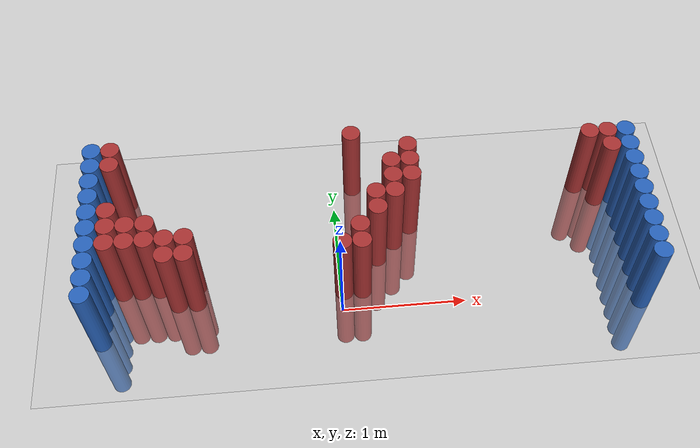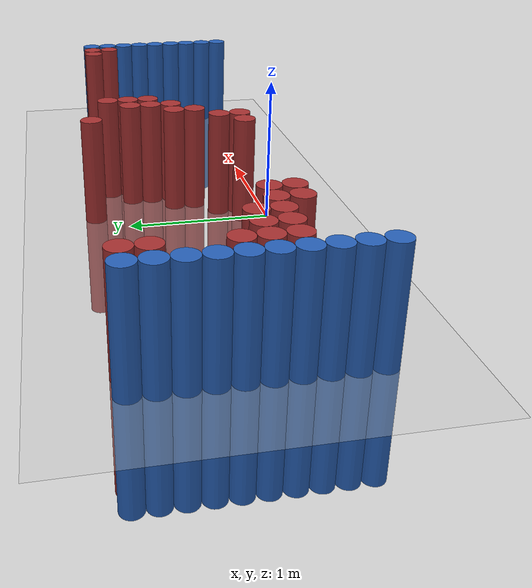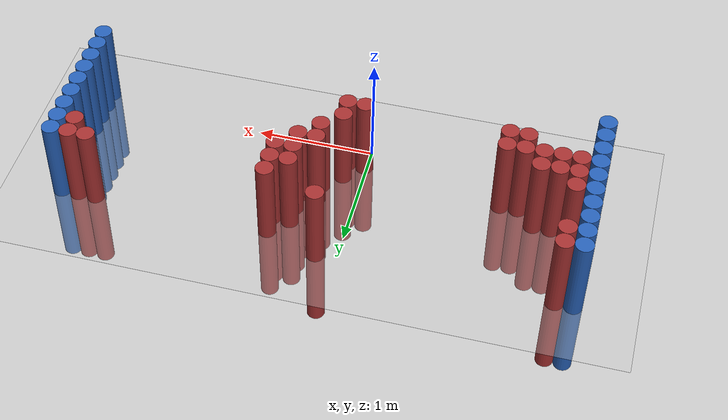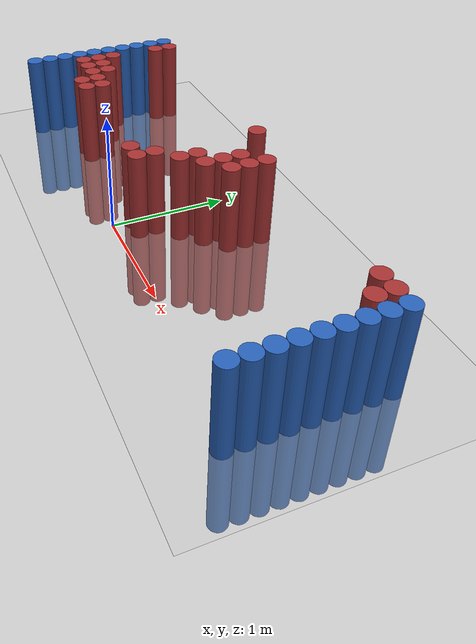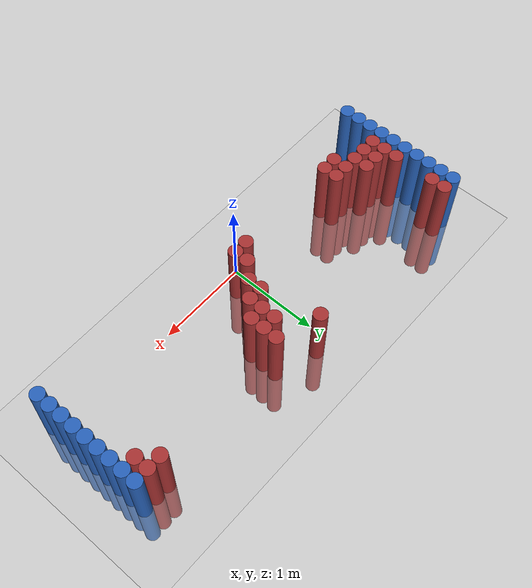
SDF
<sdf version="1.6">
 <world name="default">
  <model name="ground_plane">
   <static>1</static>
   <link name="link">
    <collision name="collision">
     <geometry><plane><normal>0 0 1</normal><size>100 100</size></plane></geometry>
     <surface><friction><ode><mu>100</mu><mu2>50</mu2></ode></friction></surface>
    </collision>
    <visual name="visual">
     <cast_shadows>0</cast_shadows>
     <geometry><plane><normal>0 0 1</normal><size>100 100</size></plane></geometry>
     <material>
      <script><uri>file://media/materials/scripts/gazebo.material</uri><name>Gazebo/Grey</name></script>
     </material>
    </visual>
   </link>
  </model>
  <model name="unit_cylinder_92">
   <static>1</static>
   <pose>2.425000 -0.125000 0.000000 0.000000 0.000000 0.000000</pose>
   <link name="link">
    <inertial>
     <mass>1</mass>
     <inertia><ixx>0.145833</ixx><ixy>0</ixy><ixz>0</ixz><iyy>0.145833</iyy><iyz>0</iyz><izz>0.125</izz></inertia>
    </inertial>
    <collision name="collision">
     <geometry><cylinder><radius>0.075000</radius><length>1.5</length></cylinder></geometry>
    </collision>
    <visual name="visual">
     <geometry><cylinder><radius>0.075000</radius><length>1.5</length></cylinder></geometry>
     <material>
      <ambient>0.152000 0.379000 0.720000 1</ambient>
      <diffuse>0.152000 0.379000 0.720000 1</diffuse>
     </material>
     <material>
      <script><name>Gazebo/Grey</name><uri>file://media/materials/scripts/gazebo.material</uri></script>
     </material>
    </visual>
   </link>
  </model>
  <model name="unit_cylinder_93">
   <static>1</static>
   <pose>-1.925000 -0.125000 0.000000 0.000000 0.000000 0.000000</pose>
   <link name="link">
    <inertial>
     <mass>1</mass>
     <inertia><ixx>0.145833</ixx><ixy>0</ixy><ixz>0</ixz><iyy>0.145833</iyy><iyz>0</iyz><izz>0.125</izz></inertia>
    </inertial>
    <collision name="collision">
     <geometry><cylinder><radius>0.075000</radius><length>1.5</length></cylinder></geometry>
    </collision>
    <visual name="visual">
     <geometry><cylinder><radius>0.075000</radius><length>1.5</length></cylinder></geometry>
     <material>
      <ambient>0.152000 0.379000 0.720000 1</ambient>
      <diffuse>0.152000 0.379000 0.720000 1</diffuse>
     </material>
     <material>
      <script><name>Gazebo/Grey</name><uri>file://media/materials/scripts/gazebo.material</uri></script>
     </material>
    </visual>
   </link>
  </model>
  <model name="unit_cylinder_94">
   <static>1</static>
   <pose>2.425000 0.025000 0.000000 0.000000 0.000000 0.000000</pose>
   <link name="link">
    <inertial>
     <mass>1</mass>
     <inertia><ixx>0.145833</ixx><ixy>0</ixy><ixz>0</ixz><iyy>0.145833</iyy><iyz>0</iyz><izz>0.125</izz></inertia>
    </inertial>
    <collision name="collision">
     <geometry><cylinder><radius>0.075000</radius><length>1.5</length></cylinder></geometry>
    </collision>
    <visual name="visual">
     <geometry><cylinder><radius>0.075000</radius><length>1.5</length></cylinder></geometry>
     <material>
      <ambient>0.152000 0.379000 0.720000 1</ambient>
      <diffuse>0.152000 0.379000 0.720000 1</diffuse>
     </material>
     <material>
      <script><name>Gazebo/Grey</name><uri>file://media/materials/scripts/gazebo.material</uri></script>
     </material>
    </visual>
   </link>
  </model>
  <model name="unit_cylinder_95">
   <static>1</static>
   <pose>-1.925000 0.025000 0.000000 0.000000 0.000000 0.000000</pose>
   <link name="link">
    <inertial>
     <mass>1</mass>
     <inertia><ixx>0.145833</ixx><ixy>0</ixy><ixz>0</ixz><iyy>0.145833</iyy><iyz>0</iyz><izz>0.125</izz></inertia>
    </inertial>
    <collision name="collision">
     <geometry><cylinder><radius>0.075000</radius><length>1.5</length></cylinder></geometry>
    </collision>
    <visual name="visual">
     <geometry><cylinder><radius>0.075000</radius><length>1.5</length></cylinder></geometry>
     <material>
      <ambient>0.152000 0.379000 0.720000 1</ambient>
      <diffuse>0.152000 0.379000 0.720000 1</diffuse>
     </material>
     <material>
      <script><name>Gazebo/Grey</name><uri>file://media/materials/scripts/gazebo.material</uri></script>
     </material>
    </visual>
   </link>
  </model>
  <model name="unit_cylinder_96">
   <static>1</static>
   <pose>-1.925000 0.175000 0.000000 0.000000 0.000000 0.000000</pose>
   <link name="link">
    <inertial>
     <mass>1</mass>
     <inertia><ixx>0.145833</ixx><ixy>0</ixy><ixz>0</ixz><iyy>0.145833</iyy><iyz>0</iyz><izz>0.125</izz></inertia>
    </inertial>
    <collision name="collision">
     <geometry><cylinder><radius>0.075000</radius><length>1.5</length></cylinder></geometry>
    </collision>
    <visual name="visual">
     <geometry><cylinder><radius>0.075000</radius><length>1.5</length></cylinder></geometry>
     <material>
      <ambient>0.152000 0.379000 0.720000 1</ambient>
      <diffuse>0.152000 0.379000 0.720000 1</diffuse>
     </material>
     <material>
      <script><name>Gazebo/Grey</name><uri>file://media/materials/scripts/gazebo.material</uri></script>
     </material>
    </visual>
   </link>
  </model>
  <model name="unit_cylinder_97">
   <static>1</static>
   <pose>-1.925000 0.325000 0.000000 0.000000 0.000000 0.000000</pose>
   <link name="link">
    <inertial>
     <mass>1</mass>
     <inertia><ixx>0.145833</ixx><ixy>0</ixy><ixz>0</ixz><iyy>0.145833</iyy><iyz>0</iyz><izz>0.125</izz></inertia>
    </inertial>
    <collision name="collision">
     <geometry><cylinder><radius>0.075000</radius><length>1.5</length></cylinder></geometry>
    </collision>
    <visual name="visual">
     <geometry><cylinder><radius>0.075000</radius><length>1.5</length></cylinder></geometry>
     <material>
      <ambient>0.152000 0.379000 0.720000 1</ambient>
      <diffuse>0.152000 0.379000 0.720000 1</diffuse>
     </material>
     <material>
      <script><name>Gazebo/Grey</name><uri>file://media/materials/scripts/gazebo.material</uri></script>
     </material>
    </visual>
   </link>
  </model>
  <model name="unit_cylinder_98">
   <static>1</static>
   <pose>-1.925000 0.475000 0.000000 0.000000 0.000000 0.000000</pose>
   <link name="link">
    <inertial>
     <mass>1</mass>
     <inertia><ixx>0.145833</ixx><ixy>0</ixy><ixz>0</ixz><iyy>0.145833</iyy><iyz>0</iyz><izz>0.125</izz></inertia>
    </inertial>
    <collision name="collision">
     <geometry><cylinder><radius>0.075000</radius><length>1.5</length></cylinder></geometry>
    </collision>
    <visual name="visual">
     <geometry><cylinder><radius>0.075000</radius><length>1.5</length></cylinder></geometry>
     <material>
      <ambient>0.152000 0.379000 0.720000 1</ambient>
      <diffuse>0.152000 0.379000 0.720000 1</diffuse>
     </material>
     <material>
      <script><name>Gazebo/Grey</name><uri>file://media/materials/scripts/gazebo.material</uri></script>
     </material>
    </visual>
   </link>
  </model>
  <model name="unit_cylinder_99">
   <static>1</static>
   <pose>-1.925000 0.625000 0.000000 0.000000 0.000000 0.000000</pose>
   <link name="link">
    <inertial>
     <mass>1</mass>
     <inertia><ixx>0.145833</ixx><ixy>0</ixy><ixz>0</ixz><iyy>0.145833</iyy><iyz>0</iyz><izz>0.125</izz></inertia>
    </inertial>
    <collision name="collision">
     <geometry><cylinder><radius>0.075000</radius><length>1.5</length></cylinder></geometry>
    </collision>
    <visual name="visual">
     <geometry><cylinder><radius>0.075000</radius><length>1.5</length></cylinder></geometry>
     <material>
      <ambient>0.152000 0.379000 0.720000 1</ambient>
      <diffuse>0.152000 0.379000 0.720000 1</diffuse>
     </material>
     <material>
      <script><name>Gazebo/Grey</name><uri>file://media/materials/scripts/gazebo.material</uri></script>
     </material>
    </visual>
   </link>
  </model>
  <model name="unit_cylinder_100">
   <static>1</static>
   <pose>-1.925000 0.775000 0.000000 0.000000 0.000000 0.000000</pose>
   <link name="link">
    <inertial>
     <mass>1</mass>
     <inertia><ixx>0.145833</ixx><ixy>0</ixy><ixz>0</ixz><iyy>0.145833</iyy><iyz>0</iyz><izz>0.125</izz></inertia>
    </inertial>
    <collision name="collision">
     <geometry><cylinder><radius>0.075000</radius><length>1.5</length></cylinder></geometry>
    </collision>
    <visual name="visual">
     <geometry><cylinder><radius>0.075000</radius><length>1.5</length></cylinder></geometry>
     <material>
      <ambient>0.152000 0.379000 0.720000 1</ambient>
      <diffuse>0.152000 0.379000 0.720000 1</diffuse>
     </material>
     <material>
      <script><name>Gazebo/Grey</name><uri>file://media/materials/scripts/gazebo.material</uri></script>
     </material>
    </visual>
   </link>
  </model>
  <model name="unit_cylinder_101">
   <static>1</static>
   <pose>-1.925000 0.925000 0.000000 0.000000 0.000000 0.000000</pose>
   <link name="link">
    <inertial>
     <mass>1</mass>
     <inertia><ixx>0.145833</ixx><ixy>0</ixy><ixz>0</ixz><iyy>0.145833</iyy><iyz>0</iyz><izz>0.125</izz></inertia>
    </inertial>
    <collision name="collision">
     <geometry><cylinder><radius>0.075000</radius><length>1.5</length></cylinder></geometry>
    </collision>
    <visual name="visual">
     <geometry><cylinder><radius>0.075000</radius><length>1.5</length></cylinder></geometry>
     <material>
      <ambient>0.152000 0.379000 0.720000 1</ambient>
      <diffuse>0.152000 0.379000 0.720000 1</diffuse>
     </material>
     <material>
      <script><name>Gazebo/Grey</name><uri>file://media/materials/scripts/gazebo.material</uri></script>
     </material>
    </visual>
   </link>
  </model>
  <model name="unit_cylinder_102">
   <static>1</static>
   <pose>-1.925000 1.075000 0.000000 0.000000 0.000000 0.000000</pose>
   <link name="link">
    <inertial>
     <mass>1</mass>
     <inertia><ixx>0.145833</ixx><ixy>0</ixy><ixz>0</ixz><iyy>0.145833</iyy><iyz>0</iyz><izz>0.125</izz></inertia>
    </inertial>
    <collision name="collision">
     <geometry><cylinder><radius>0.075000</radius><length>1.5</length></cylinder></geometry>
    </collision>
    <visual name="visual">
     <geometry><cylinder><radius>0.075000</radius><length>1.5</length></cylinder></geometry>
     <material>
      <ambient>0.152000 0.379000 0.720000 1</ambient>
      <diffuse>0.152000 0.379000 0.720000 1</diffuse>
     </material>
     <material>
      <script><name>Gazebo/Grey</name><uri>file://media/materials/scripts/gazebo.material</uri></script>
     </material>
    </visual>
   </link>
  </model>
  <model name="unit_cylinder_103">
   <static>1</static>
   <pose>-1.925000 1.225000 0.000000 0.000000 0.000000 0.000000</pose>
   <link name="link">
    <inertial>
     <mass>1</mass>
     <inertia><ixx>0.145833</ixx><ixy>0</ixy><ixz>0</ixz><iyy>0.145833</iyy><iyz>0</iyz><izz>0.125</izz></inertia>
    </inertial>
    <collision name="collision">
     <geometry><cylinder><radius>0.075000</radius><length>1.5</length></cylinder></geometry>
    </collision>
    <visual name="visual">
     <geometry><cylinder><radius>0.075000</radius><length>1.5</length></cylinder></geometry>
     <material>
      <ambient>0.152000 0.379000 0.720000 1</ambient>
      <diffuse>0.152000 0.379000 0.720000 1</diffuse>
     </material>
     <material>
      <script><name>Gazebo/Grey</name><uri>file://media/materials/scripts/gazebo.material</uri></script>
     </material>
    </visual>
   </link>
  </model>
  <model name="unit_cylinder_126">
   <static>1</static>
   <pose>-1.775000 0.325000 0.000000 0.000000 0.000000 0.000000</pose>
   <link name="link">
    <inertial>
     <mass>1</mass>
     <inertia><ixx>0.145833</ixx><ixy>0</ixy><ixz>0</ixz><iyy>0.145833</iyy><iyz>0</iyz><izz>0.125</izz></inertia>
    </inertial>
    <collision name="collision">
     <geometry><cylinder><radius>0.075000</radius><length>1.5</length></cylinder></geometry>
    </collision>
    <visual name="visual">
     <geometry><cylinder><radius>0.075000</radius><length>1.5</length></cylinder></geometry>
     <material>
      <ambient>0.648000 0.192000 0.192000 1</ambient>
      <diffuse>0.648000 0.192000 0.192000 1</diffuse>
     </material>
     <material>
      <script><name>Gazebo/Grey</name><uri>file://media/materials/scripts/gazebo.material</uri></script>
     </material>
    </visual>
   </link>
  </model>
  <model name="unit_cylinder_127">
   <static>1</static>
   <pose>-1.775000 0.475000 0.000000 0.000000 0.000000 0.000000</pose>
   <link name="link">
    <inertial>
     <mass>1</mass>
     <inertia><ixx>0.145833</ixx><ixy>0</ixy><ixz>0</ixz><iyy>0.145833</iyy><iyz>0</iyz><izz>0.125</izz></inertia>
    </inertial>
    <collision name="collision">
     <geometry><cylinder><radius>0.075000</radius><length>1.5</length></cylinder></geometry>
    </collision>
    <visual name="visual">
     <geometry><cylinder><radius>0.075000</radius><length>1.5</length></cylinder></geometry>
     <material>
      <ambient>0.648000 0.192000 0.192000 1</ambient>
      <diffuse>0.648000 0.192000 0.192000 1</diffuse>
     </material>
     <material>
      <script><name>Gazebo/Grey</name><uri>file://media/materials/scripts/gazebo.material</uri></script>
     </material>
    </visual>
   </link>
  </model>
  <model name="unit_cylinder_128">
   <static>1</static>
   <pose>-1.775000 0.625000 0.000000 0.000000 0.000000 0.000000</pose>
   <link name="link">
    <inertial>
     <mass>1</mass>
     <inertia><ixx>0.145833</ixx><ixy>0</ixy><ixz>0</ixz><iyy>0.145833</iyy><iyz>0</iyz><izz>0.125</izz></inertia>
    </inertial>
    <collision name="collision">
     <geometry><cylinder><radius>0.075000</radius><length>1.5</length></cylinder></geometry>
    </collision>
    <visual name="visual">
     <geometry><cylinder><radius>0.075000</radius><length>1.5</length></cylinder></geometry>
     <material>
      <ambient>0.648000 0.192000 0.192000 1</ambient>
      <diffuse>0.648000 0.192000 0.192000 1</diffuse>
     </material>
     <material>
      <script><name>Gazebo/Grey</name><uri>file://media/materials/scripts/gazebo.material</uri></script>
     </material>
    </visual>
   </link>
  </model>
  <model name="unit_cylinder_129">
   <static>1</static>
   <pose>-1.775000 1.075000 0.000000 0.000000 0.000000 0.000000</pose>
   <link name="link">
    <inertial>
     <mass>1</mass>
     <inertia><ixx>0.145833</ixx><ixy>0</ixy><ixz>0</ixz><iyy>0.145833</iyy><iyz>0</iyz><izz>0.125</izz></inertia>
    </inertial>
    <collision name="collision">
     <geometry><cylinder><radius>0.075000</radius><length>1.5</length></cylinder></geometry>
    </collision>
    <visual name="visual">
     <geometry><cylinder><radius>0.075000</radius><length>1.5</length></cylinder></geometry>
     <material>
      <ambient>0.648000 0.192000 0.192000 1</ambient>
      <diffuse>0.648000 0.192000 0.192000 1</diffuse>
     </material>
     <material>
      <script><name>Gazebo/Grey</name><uri>file://media/materials/scripts/gazebo.material</uri></script>
     </material>
    </visual>
   </link>
  </model>
  <model name="unit_cylinder_130">
   <static>1</static>
   <pose>-1.775000 1.225000 0.000000 0.000000 0.000000 0.000000</pose>
   <link name="link">
    <inertial>
     <mass>1</mass>
     <inertia><ixx>0.145833</ixx><ixy>0</ixy><ixz>0</ixz><iyy>0.145833</iyy><iyz>0</iyz><izz>0.125</izz></inertia>
    </inertial>
    <collision name="collision">
     <geometry><cylinder><radius>0.075000</radius><length>1.5</length></cylinder></geometry>
    </collision>
    <visual name="visual">
     <geometry><cylinder><radius>0.075000</radius><length>1.5</length></cylinder></geometry>
     <material>
      <ambient>0.648000 0.192000 0.192000 1</ambient>
      <diffuse>0.648000 0.192000 0.192000 1</diffuse>
     </material>
     <material>
      <script><name>Gazebo/Grey</name><uri>file://media/materials/scripts/gazebo.material</uri></script>
     </material>
    </visual>
   </link>
  </model>
  <model name="unit_cylinder_149">
   <static>1</static>
   <pose>-1.625000 0.325000 0.000000 0.000000 0.000000 0.000000</pose>
   <link name="link">
    <inertial>
     <mass>1</mass>
     <inertia><ixx>0.145833</ixx><ixy>0</ixy><ixz>0</ixz><iyy>0.145833</iyy><iyz>0</iyz><izz>0.125</izz></inertia>
    </inertial>
    <collision name="collision">
     <geometry><cylinder><radius>0.075000</radius><length>1.5</length></cylinder></geometry>
    </collision>
    <visual name="visual">
     <geometry><cylinder><radius>0.075000</radius><length>1.5</length></cylinder></geometry>
     <material>
      <ambient>0.648000 0.192000 0.192000 1</ambient>
      <diffuse>0.648000 0.192000 0.192000 1</diffuse>
     </material>
     <material>
      <script><name>Gazebo/Grey</name><uri>file://media/materials/scripts/gazebo.material</uri></script>
     </material>
    </visual>
   </link>
  </model>
  <model name="unit_cylinder_150">
   <static>1</static>
   <pose>-1.625000 0.475000 0.000000 0.000000 0.000000 0.000000</pose>
   <link name="link">
    <inertial>
     <mass>1</mass>
     <inertia><ixx>0.145833</ixx><ixy>0</ixy><ixz>0</ixz><iyy>0.145833</iyy><iyz>0</iyz><izz>0.125</izz></inertia>
    </inertial>
    <collision name="collision">
     <geometry><cylinder><radius>0.075000</radius><length>1.5</length></cylinder></geometry>
    </collision>
    <visual name="visual">
     <geometry><cylinder><radius>0.075000</radius><length>1.5</length></cylinder></geometry>
     <material>
      <ambient>0.648000 0.192000 0.192000 1</ambient>
      <diffuse>0.648000 0.192000 0.192000 1</diffuse>
     </material>
     <material>
      <script><name>Gazebo/Grey</name><uri>file://media/materials/scripts/gazebo.material</uri></script>
     </material>
    </visual>
   </link>
  </model>
  <model name="unit_cylinder_156">
   <static>1</static>
   <pose>-1.475000 0.325000 0.000000 0.000000 0.000000 0.000000</pose>
   <link name="link">
    <inertial>
     <mass>1</mass>
     <inertia><ixx>0.145833</ixx><ixy>0</ixy><ixz>0</ixz><iyy>0.145833</iyy><iyz>0</iyz><izz>0.125</izz></inertia>
    </inertial>
    <collision name="collision">
     <geometry><cylinder><radius>0.075000</radius><length>1.5</length></cylinder></geometry>
    </collision>
    <visual name="visual">
     <geometry><cylinder><radius>0.075000</radius><length>1.5</length></cylinder></geometry>
     <material>
      <ambient>0.648000 0.192000 0.192000 1</ambient>
      <diffuse>0.648000 0.192000 0.192000 1</diffuse>
     </material>
     <material>
      <script><name>Gazebo/Grey</name><uri>file://media/materials/scripts/gazebo.material</uri></script>
     </material>
    </visual>
   </link>
  </model>
  <model name="unit_cylinder_157">
   <static>1</static>
   <pose>-1.475000 0.475000 0.000000 0.000000 0.000000 0.000000</pose>
   <link name="link">
    <inertial>
     <mass>1</mass>
     <inertia><ixx>0.145833</ixx><ixy>0</ixy><ixz>0</ixz><iyy>0.145833</iyy><iyz>0</iyz><izz>0.125</izz></inertia>
    </inertial>
    <collision name="collision">
     <geometry><cylinder><radius>0.075000</radius><length>1.5</length></cylinder></geometry>
    </collision>
    <visual name="visual">
     <geometry><cylinder><radius>0.075000</radius><length>1.5</length></cylinder></geometry>
     <material>
      <ambient>0.648000 0.192000 0.192000 1</ambient>
      <diffuse>0.648000 0.192000 0.192000 1</diffuse>
     </material>
     <material>
      <script><name>Gazebo/Grey</name><uri>file://media/materials/scripts/gazebo.material</uri></script>
     </material>
    </visual>
   </link>
  </model>
  <model name="unit_cylinder_164">
   <static>1</static>
   <pose>-1.325000 0.175000 0.000000 0.000000 0.000000 0.000000</pose>
   <link name="link">
    <inertial>
     <mass>1</mass>
     <inertia><ixx>0.145833</ixx><ixy>0</ixy><ixz>0</ixz><iyy>0.145833</iyy><iyz>0</iyz><izz>0.125</izz></inertia>
    </inertial>
    <collision name="collision">
     <geometry><cylinder><radius>0.075000</radius><length>1.5</length></cylinder></geometry>
    </collision>
    <visual name="visual">
     <geometry><cylinder><radius>0.075000</radius><length>1.5</length></cylinder></geometry>
     <material>
      <ambient>0.648000 0.192000 0.192000 1</ambient>
      <diffuse>0.648000 0.192000 0.192000 1</diffuse>
     </material>
     <material>
      <script><name>Gazebo/Grey</name><uri>file://media/materials/scripts/gazebo.material</uri></script>
     </material>
    </visual>
   </link>
  </model>
  <model name="unit_cylinder_165">
   <static>1</static>
   <pose>-1.325000 0.325000 0.000000 0.000000 0.000000 0.000000</pose>
   <link name="link">
    <inertial>
     <mass>1</mass>
     <inertia><ixx>0.145833</ixx><ixy>0</ixy><ixz>0</ixz><iyy>0.145833</iyy><iyz>0</iyz><izz>0.125</izz></inertia>
    </inertial>
    <collision name="collision">
     <geometry><cylinder><radius>0.075000</radius><length>1.5</length></cylinder></geometry>
    </collision>
    <visual name="visual">
     <geometry><cylinder><radius>0.075000</radius><length>1.5</length></cylinder></geometry>
     <material>
      <ambient>0.648000 0.192000 0.192000 1</ambient>
      <diffuse>0.648000 0.192000 0.192000 1</diffuse>
     </material>
     <material>
      <script><name>Gazebo/Grey</name><uri>file://media/materials/scripts/gazebo.material</uri></script>
     </material>
    </visual>
   </link>
  </model>
  <model name="unit_cylinder_172">
   <static>1</static>
   <pose>-1.175000 0.175000 0.000000 0.000000 0.000000 0.000000</pose>
   <link name="link">
    <inertial>
     <mass>1</mass>
     <inertia><ixx>0.145833</ixx><ixy>0</ixy><ixz>0</ixz><iyy>0.145833</iyy><iyz>0</iyz><izz>0.125</izz></inertia>
    </inertial>
    <collision name="collision">
     <geometry><cylinder><radius>0.075000</radius><length>1.5</length></cylinder></geometry>
    </collision>
    <visual name="visual">
     <geometry><cylinder><radius>0.075000</radius><length>1.5</length></cylinder></geometry>
     <material>
      <ambient>0.648000 0.192000 0.192000 1</ambient>
      <diffuse>0.648000 0.192000 0.192000 1</diffuse>
     </material>
     <material>
      <script><name>Gazebo/Grey</name><uri>file://media/materials/scripts/gazebo.material</uri></script>
     </material>
    </visual>
   </link>
  </model>
  <model name="unit_cylinder_173">
   <static>1</static>
   <pose>-1.175000 0.325000 0.000000 0.000000 0.000000 0.000000</pose>
   <link name="link">
    <inertial>
     <mass>1</mass>
     <inertia><ixx>0.145833</ixx><ixy>0</ixy><ixz>0</ixz><iyy>0.145833</iyy><iyz>0</iyz><izz>0.125</izz></inertia>
    </inertial>
    <collision name="collision">
     <geometry><cylinder><radius>0.075000</radius><length>1.5</length></cylinder></geometry>
    </collision>
    <visual name="visual">
     <geometry><cylinder><radius>0.075000</radius><length>1.5</length></cylinder></geometry>
     <material>
      <ambient>0.648000 0.192000 0.192000 1</ambient>
      <diffuse>0.648000 0.192000 0.192000 1</diffuse>
     </material>
     <material>
      <script><name>Gazebo/Grey</name><uri>file://media/materials/scripts/gazebo.material</uri></script>
     </material>
    </visual>
   </link>
  </model>
  <model name="unit_cylinder_184">
   <static>1</static>
   <pose>0.025000 0.175000 0.000000 0.000000 0.000000 0.000000</pose>
   <link name="link">
    <inertial>
     <mass>1</mass>
     <inertia><ixx>0.145833</ixx><ixy>0</ixy><ixz>0</ixz><iyy>0.145833</iyy><iyz>0</iyz><izz>0.125</izz></inertia>
    </inertial>
    <collision name="collision">
     <geometry><cylinder><radius>0.075000</radius><length>1.5</length></cylinder></geometry>
    </collision>
    <visual name="visual">
     <geometry><cylinder><radius>0.075000</radius><length>1.5</length></cylinder></geometry>
     <material>
      <ambient>0.648000 0.192000 0.192000 1</ambient>
      <diffuse>0.648000 0.192000 0.192000 1</diffuse>
     </material>
     <material>
      <script><name>Gazebo/Grey</name><uri>file://media/materials/scripts/gazebo.material</uri></script>
     </material>
    </visual>
   </link>
  </model>
  <model name="unit_cylinder_187">
   <static>1</static>
   <pose>0.175000 0.175000 0.000000 0.000000 0.000000 0.000000</pose>
   <link name="link">
    <inertial>
     <mass>1</mass>
     <inertia><ixx>0.145833</ixx><ixy>0</ixy><ixz>0</ixz><iyy>0.145833</iyy><iyz>0</iyz><izz>0.125</izz></inertia>
    </inertial>
    <collision name="collision">
     <geometry><cylinder><radius>0.075000</radius><length>1.5</length></cylinder></geometry>
    </collision>
    <visual name="visual">
     <geometry><cylinder><radius>0.075000</radius><length>1.5</length></cylinder></geometry>
     <material>
      <ambient>0.648000 0.192000 0.192000 1</ambient>
      <diffuse>0.648000 0.192000 0.192000 1</diffuse>
     </material>
     <material>
      <script><name>Gazebo/Grey</name><uri>file://media/materials/scripts/gazebo.material</uri></script>
     </material>
    </visual>
   </link>
  </model>
  <model name="unit_cylinder_188">
   <static>1</static>
   <pose>0.175000 0.325000 0.000000 0.000000 0.000000 0.000000</pose>
   <link name="link">
    <inertial>
     <mass>1</mass>
     <inertia><ixx>0.145833</ixx><ixy>0</ixy><ixz>0</ixz><iyy>0.145833</iyy><iyz>0</iyz><izz>0.125</izz></inertia>
    </inertial>
    <collision name="collision">
     <geometry><cylinder><radius>0.075000</radius><length>1.5</length></cylinder></geometry>
    </collision>
    <visual name="visual">
     <geometry><cylinder><radius>0.075000</radius><length>1.5</length></cylinder></geometry>
     <material>
      <ambient>0.648000 0.192000 0.192000 1</ambient>
      <diffuse>0.648000 0.192000 0.192000 1</diffuse>
     </material>
     <material>
      <script><name>Gazebo/Grey</name><uri>file://media/materials/scripts/gazebo.material</uri></script>
     </material>
    </visual>
   </link>
  </model>
  <model name="unit_cylinder_189">
   <static>1</static>
   <pose>0.175000 1.225000 0.000000 0.000000 0.000000 0.000000</pose>
   <link name="link">
    <inertial>
     <mass>1</mass>
     <inertia><ixx>0.145833</ixx><ixy>0</ixy><ixz>0</ixz><iyy>0.145833</iyy><iyz>0</iyz><izz>0.125</izz></inertia>
    </inertial>
    <collision name="collision">
     <geometry><cylinder><radius>0.075000</radius><length>1.5</length></cylinder></geometry>
    </collision>
    <visual name="visual">
     <geometry><cylinder><radius>0.075000</radius><length>1.5</length></cylinder></geometry>
     <material>
      <ambient>0.648000 0.192000 0.192000 1</ambient>
      <diffuse>0.648000 0.192000 0.192000 1</diffuse>
     </material>
     <material>
      <script><name>Gazebo/Grey</name><uri>file://media/materials/scripts/gazebo.material</uri></script>
     </material>
    </visual>
   </link>
  </model>
  <model name="unit_cylinder_192">
   <static>1</static>
   <pose>0.325000 0.475000 0.000000 0.000000 0.000000 0.000000</pose>
   <link name="link">
    <inertial>
     <mass>1</mass>
     <inertia><ixx>0.145833</ixx><ixy>0</ixy><ixz>0</ixz><iyy>0.145833</iyy><iyz>0</iyz><izz>0.125</izz></inertia>
    </inertial>
    <collision name="collision">
     <geometry><cylinder><radius>0.075000</radius><length>1.5</length></cylinder></geometry>
    </collision>
    <visual name="visual">
     <geometry><cylinder><radius>0.075000</radius><length>1.5</length></cylinder></geometry>
     <material>
      <ambient>0.648000 0.192000 0.192000 1</ambient>
      <diffuse>0.648000 0.192000 0.192000 1</diffuse>
     </material>
     <material>
      <script><name>Gazebo/Grey</name><uri>file://media/materials/scripts/gazebo.material</uri></script>
     </material>
    </visual>
   </link>
  </model>
  <model name="unit_cylinder_193">
   <static>1</static>
   <pose>0.325000 0.625000 0.000000 0.000000 0.000000 0.000000</pose>
   <link name="link">
    <inertial>
     <mass>1</mass>
     <inertia><ixx>0.145833</ixx><ixy>0</ixy><ixz>0</ixz><iyy>0.145833</iyy><iyz>0</iyz><izz>0.125</izz></inertia>
    </inertial>
    <collision name="collision">
     <geometry><cylinder><radius>0.075000</radius><length>1.5</length></cylinder></geometry>
    </collision>
    <visual name="visual">
     <geometry><cylinder><radius>0.075000</radius><length>1.5</length></cylinder></geometry>
     <material>
      <ambient>0.648000 0.192000 0.192000 1</ambient>
      <diffuse>0.648000 0.192000 0.192000 1</diffuse>
     </material>
     <material>
      <script><name>Gazebo/Grey</name><uri>file://media/materials/scripts/gazebo.material</uri></script>
     </material>
    </visual>
   </link>
  </model>
  <model name="unit_cylinder_197">
   <static>1</static>
   <pose>0.475000 0.625000 0.000000 0.000000 0.000000 0.000000</pose>
   <link name="link">
    <inertial>
     <mass>1</mass>
     <inertia><ixx>0.145833</ixx><ixy>0</ixy><ixz>0</ixz><iyy>0.145833</iyy><iyz>0</iyz><izz>0.125</izz></inertia>
    </inertial>
    <collision name="collision">
     <geometry><cylinder><radius>0.075000</radius><length>1.5</length></cylinder></geometry>
    </collision>
    <visual name="visual">
     <geometry><cylinder><radius>0.075000</radius><length>1.5</length></cylinder></geometry>
     <material>
      <ambient>0.648000 0.192000 0.192000 1</ambient>
      <diffuse>0.648000 0.192000 0.192000 1</diffuse>
     </material>
     <material>
      <script><name>Gazebo/Grey</name><uri>file://media/materials/scripts/gazebo.material</uri></script>
     </material>
    </visual>
   </link>
  </model>
  <model name="unit_cylinder_198">
   <static>1</static>
   <pose>0.475000 0.775000 0.000000 0.000000 0.000000 0.000000</pose>
   <link name="link">
    <inertial>
     <mass>1</mass>
     <inertia><ixx>0.145833</ixx><ixy>0</ixy><ixz>0</ixz><iyy>0.145833</iyy><iyz>0</iyz><izz>0.125</izz></inertia>
    </inertial>
    <collision name="collision">
     <geometry><cylinder><radius>0.075000</radius><length>1.5</length></cylinder></geometry>
    </collision>
    <visual name="visual">
     <geometry><cylinder><radius>0.075000</radius><length>1.5</length></cylinder></geometry>
     <material>
      <ambient>0.648000 0.192000 0.192000 1</ambient>
      <diffuse>0.648000 0.192000 0.192000 1</diffuse>
     </material>
     <material>
      <script><name>Gazebo/Grey</name><uri>file://media/materials/scripts/gazebo.material</uri></script>
     </material>
    </visual>
   </link>
  </model>
  <model name="unit_cylinder_199">
   <static>1</static>
   <pose>0.475000 0.925000 0.000000 0.000000 0.000000 0.000000</pose>
   <link name="link">
    <inertial>
     <mass>1</mass>
     <inertia><ixx>0.145833</ixx><ixy>0</ixy><ixz>0</ixz><iyy>0.145833</iyy><iyz>0</iyz><izz>0.125</izz></inertia>
    </inertial>
    <collision name="collision">
     <geometry><cylinder><radius>0.075000</radius><length>1.5</length></cylinder></geometry>
    </collision>
    <visual name="visual">
     <geometry><cylinder><radius>0.075000</radius><length>1.5</length></cylinder></geometry>
     <material>
      <ambient>0.648000 0.192000 0.192000 1</ambient>
      <diffuse>0.648000 0.192000 0.192000 1</diffuse>
     </material>
     <material>
      <script><name>Gazebo/Grey</name><uri>file://media/materials/scripts/gazebo.material</uri></script>
     </material>
    </visual>
   </link>
  </model>
  <model name="unit_cylinder_200">
   <static>1</static>
   <pose>0.625000 0.775000 0.000000 0.000000 0.000000 0.000000</pose>
   <link name="link">
    <inertial>
     <mass>1</mass>
     <inertia><ixx>0.145833</ixx><ixy>0</ixy><ixz>0</ixz><iyy>0.145833</iyy><iyz>0</iyz><izz>0.125</izz></inertia>
    </inertial>
    <collision name="collision">
     <geometry><cylinder><radius>0.075000</radius><length>1.5</length></cylinder></geometry>
    </collision>
    <visual name="visual">
     <geometry><cylinder><radius>0.075000</radius><length>1.5</length></cylinder></geometry>
     <material>
      <ambient>0.648000 0.192000 0.192000 1</ambient>
      <diffuse>0.648000 0.192000 0.192000 1</diffuse>
     </material>
     <material>
      <script><name>Gazebo/Grey</name><uri>file://media/materials/scripts/gazebo.material</uri></script>
     </material>
    </visual>
   </link>
  </model>
  <model name="unit_cylinder_201">
   <static>1</static>
   <pose>0.625000 0.925000 0.000000 0.000000 0.000000 0.000000</pose>
   <link name="link">
    <inertial>
     <mass>1</mass>
     <inertia><ixx>0.145833</ixx><ixy>0</ixy><ixz>0</ixz><iyy>0.145833</iyy><iyz>0</iyz><izz>0.125</izz></inertia>
    </inertial>
    <collision name="collision">
     <geometry><cylinder><radius>0.075000</radius><length>1.5</length></cylinder></geometry>
    </collision>
    <visual name="visual">
     <geometry><cylinder><radius>0.075000</radius><length>1.5</length></cylinder></geometry>
     <material>
      <ambient>0.648000 0.192000 0.192000 1</ambient>
      <diffuse>0.648000 0.192000 0.192000 1</diffuse>
     </material>
     <material>
      <script><name>Gazebo/Grey</name><uri>file://media/materials/scripts/gazebo.material</uri></script>
     </material>
    </visual>
   </link>
  </model>
  <model name="unit_cylinder_202">
   <static>1</static>
   <pose>0.625000 1.075000 0.000000 0.000000 0.000000 0.000000</pose>
   <link name="link">
    <inertial>
     <mass>1</mass>
     <inertia><ixx>0.145833</ixx><ixy>0</ixy><ixz>0</ixz><iyy>0.145833</iyy><iyz>0</iyz><izz>0.125</izz></inertia>
    </inertial>
    <collision name="collision">
     <geometry><cylinder><radius>0.075000</radius><length>1.5</length></cylinder></geometry>
    </collision>
    <visual name="visual">
     <geometry><cylinder><radius>0.075000</radius><length>1.5</length></cylinder></geometry>
     <material>
      <ambient>0.648000 0.192000 0.192000 1</ambient>
      <diffuse>0.648000 0.192000 0.192000 1</diffuse>
     </material>
     <material>
      <script><name>Gazebo/Grey</name><uri>file://media/materials/scripts/gazebo.material</uri></script>
     </material>
    </visual>
   </link>
  </model>
  <model name="unit_cylinder_220">
   <static>1</static>
   <pose>2.125000 1.075000 0.000000 0.000000 0.000000 0.000000</pose>
   <link name="link">
    <inertial>
     <mass>1</mass>
     <inertia><ixx>0.145833</ixx><ixy>0</ixy><ixz>0</ixz><iyy>0.145833</iyy><iyz>0</iyz><izz>0.125</izz></inertia>
    </inertial>
    <collision name="collision">
     <geometry><cylinder><radius>0.075000</radius><length>1.5</length></cylinder></geometry>
    </collision>
    <visual name="visual">
     <geometry><cylinder><radius>0.075000</radius><length>1.5</length></cylinder></geometry>
     <material>
      <ambient>0.648000 0.192000 0.192000 1</ambient>
      <diffuse>0.648000 0.192000 0.192000 1</diffuse>
     </material>
     <material>
      <script><name>Gazebo/Grey</name><uri>file://media/materials/scripts/gazebo.material</uri></script>
     </material>
    </visual>
   </link>
  </model>
  <model name="unit_cylinder_230">
   <static>1</static>
   <pose>2.275000 0.925000 0.000000 0.000000 0.000000 0.000000</pose>
   <link name="link">
    <inertial>
     <mass>1</mass>
     <inertia><ixx>0.145833</ixx><ixy>0</ixy><ixz>0</ixz><iyy>0.145833</iyy><iyz>0</iyz><izz>0.125</izz></inertia>
    </inertial>
    <collision name="collision">
     <geometry><cylinder><radius>0.075000</radius><length>1.5</length></cylinder></geometry>
    </collision>
    <visual name="visual">
     <geometry><cylinder><radius>0.075000</radius><length>1.5</length></cylinder></geometry>
     <material>
      <ambient>0.648000 0.192000 0.192000 1</ambient>
      <diffuse>0.648000 0.192000 0.192000 1</diffuse>
     </material>
     <material>
      <script><name>Gazebo/Grey</name><uri>file://media/materials/scripts/gazebo.material</uri></script>
     </material>
    </visual>
   </link>
  </model>
  <model name="unit_cylinder_231">
   <static>1</static>
   <pose>2.275000 1.075000 0.000000 0.000000 0.000000 0.000000</pose>
   <link name="link">
    <inertial>
     <mass>1</mass>
     <inertia><ixx>0.145833</ixx><ixy>0</ixy><ixz>0</ixz><iyy>0.145833</iyy><iyz>0</iyz><izz>0.125</izz></inertia>
    </inertial>
    <collision name="collision">
     <geometry><cylinder><radius>0.075000</radius><length>1.5</length></cylinder></geometry>
    </collision>
    <visual name="visual">
     <geometry><cylinder><radius>0.075000</radius><length>1.5</length></cylinder></geometry>
     <material>
      <ambient>0.648000 0.192000 0.192000 1</ambient>
      <diffuse>0.648000 0.192000 0.192000 1</diffuse>
     </material>
     <material>
      <script><name>Gazebo/Grey</name><uri>file://media/materials/scripts/gazebo.material</uri></script>
     </material>
    </visual>
   </link>
  </model>
  <model name="unit_cylinder_248">
   <static>1</static>
   <pose>2.425000 0.175000 0.000000 0.000000 0.000000 0.000000</pose>
   <link name="link">
    <inertial>
     <mass>1</mass>
     <inertia><ixx>0.145833</ixx><ixy>0</ixy><ixz>0</ixz><iyy>0.145833</iyy><iyz>0</iyz><izz>0.125</izz></inertia>
    </inertial>
    <collision name="collision">
     <geometry><cylinder><radius>0.075000</radius><length>1.5</length></cylinder></geometry>
    </collision>
    <visual name="visual">
     <geometry><cylinder><radius>0.075000</radius><length>1.5</length></cylinder></geometry>
     <material>
      <ambient>0.152000 0.379000 0.720000 1</ambient>
      <diffuse>0.152000 0.379000 0.720000 1</diffuse>
     </material>
     <material>
      <script><name>Gazebo/Grey</name><uri>file://media/materials/scripts/gazebo.material</uri></script>
     </material>
    </visual>
   </link>
  </model>
  <model name="unit_cylinder_249">
   <static>1</static>
   <pose>2.425000 0.325000 0.000000 0.000000 0.000000 0.000000</pose>
   <link name="link">
    <inertial>
     <mass>1</mass>
     <inertia><ixx>0.145833</ixx><ixy>0</ixy><ixz>0</ixz><iyy>0.145833</iyy><iyz>0</iyz><izz>0.125</izz></inertia>
    </inertial>
    <collision name="collision">
     <geometry><cylinder><radius>0.075000</radius><length>1.5</length></cylinder></geometry>
    </collision>
    <visual name="visual">
     <geometry><cylinder><radius>0.075000</radius><length>1.5</length></cylinder></geometry>
     <material>
      <ambient>0.152000 0.379000 0.720000 1</ambient>
      <diffuse>0.152000 0.379000 0.720000 1</diffuse>
     </material>
     <material>
      <script><name>Gazebo/Grey</name><uri>file://media/materials/scripts/gazebo.material</uri></script>
     </material>
    </visual>
   </link>
  </model>
  <model name="unit_cylinder_250">
   <static>1</static>
   <pose>2.425000 0.475000 0.000000 0.000000 0.000000 0.000000</pose>
   <link name="link">
    <inertial>
     <mass>1</mass>
     <inertia><ixx>0.145833</ixx><ixy>0</ixy><ixz>0</ixz><iyy>0.145833</iyy><iyz>0</iyz><izz>0.125</izz></inertia>
    </inertial>
    <collision name="collision">
     <geometry><cylinder><radius>0.075000</radius><length>1.5</length></cylinder></geometry>
    </collision>
    <visual name="visual">
     <geometry><cylinder><radius>0.075000</radius><length>1.5</length></cylinder></geometry>
     <material>
      <ambient>0.152000 0.379000 0.720000 1</ambient>
      <diffuse>0.152000 0.379000 0.720000 1</diffuse>
     </material>
     <material>
      <script><name>Gazebo/Grey</name><uri>file://media/materials/scripts/gazebo.material</uri></script>
     </material>
    </visual>
   </link>
  </model>
  <model name="unit_cylinder_251">
   <static>1</static>
   <pose>2.425000 0.625000 0.000000 0.000000 0.000000 0.000000</pose>
   <link name="link">
    <inertial>
     <mass>1</mass>
     <inertia><ixx>0.145833</ixx><ixy>0</ixy><ixz>0</ixz><iyy>0.145833</iyy><iyz>0</iyz><izz>0.125</izz></inertia>
    </inertial>
    <collision name="collision">
     <geometry><cylinder><radius>0.075000</radius><length>1.5</length></cylinder></geometry>
    </collision>
    <visual name="visual">
     <geometry><cylinder><radius>0.075000</radius><length>1.5</length></cylinder></geometry>
     <material>
      <ambient>0.152000 0.379000 0.720000 1</ambient>
      <diffuse>0.152000 0.379000 0.720000 1</diffuse>
     </material>
     <material>
      <script><name>Gazebo/Grey</name><uri>file://media/materials/scripts/gazebo.material</uri></script>
     </material>
    </visual>
   </link>
  </model>
  <model name="unit_cylinder_252">
   <static>1</static>
   <pose>2.425000 0.775000 0.000000 0.000000 0.000000 0.000000</pose>
   <link name="link">
    <inertial>
     <mass>1</mass>
     <inertia><ixx>0.145833</ixx><ixy>0</ixy><ixz>0</ixz><iyy>0.145833</iyy><iyz>0</iyz><izz>0.125</izz></inertia>
    </inertial>
    <collision name="collision">
     <geometry><cylinder><radius>0.075000</radius><length>1.5</length></cylinder></geometry>
    </collision>
    <visual name="visual">
     <geometry><cylinder><radius>0.075000</radius><length>1.5</length></cylinder></geometry>
     <material>
      <ambient>0.152000 0.379000 0.720000 1</ambient>
      <diffuse>0.152000 0.379000 0.720000 1</diffuse>
     </material>
     <material>
      <script><name>Gazebo/Grey</name><uri>file://media/materials/scripts/gazebo.material</uri></script>
     </material>
    </visual>
   </link>
  </model>
  <model name="unit_cylinder_253">
   <static>1</static>
   <pose>2.425000 0.925000 0.000000 0.000000 0.000000 0.000000</pose>
   <link name="link">
    <inertial>
     <mass>1</mass>
     <inertia><ixx>0.145833</ixx><ixy>0</ixy><ixz>0</ixz><iyy>0.145833</iyy><iyz>0</iyz><izz>0.125</izz></inertia>
    </inertial>
    <collision name="collision">
     <geometry><cylinder><radius>0.075000</radius><length>1.5</length></cylinder></geometry>
    </collision>
    <visual name="visual">
     <geometry><cylinder><radius>0.075000</radius><length>1.5</length></cylinder></geometry>
     <material>
      <ambient>0.152000 0.379000 0.720000 1</ambient>
      <diffuse>0.152000 0.379000 0.720000 1</diffuse>
     </material>
     <material>
      <script><name>Gazebo/Grey</name><uri>file://media/materials/scripts/gazebo.material</uri></script>
     </material>
    </visual>
   </link>
  </model>
  <model name="unit_cylinder_254">
   <static>1</static>
   <pose>2.425000 1.075000 0.000000 0.000000 0.000000 0.000000</pose>
   <link name="link">
    <inertial>
     <mass>1</mass>
     <inertia><ixx>0.145833</ixx><ixy>0</ixy><ixz>0</ixz><iyy>0.145833</iyy><iyz>0</iyz><izz>0.125</izz></inertia>
    </inertial>
    <collision name="collision">
     <geometry><cylinder><radius>0.075000</radius><length>1.5</length></cylinder></geometry>
    </collision>
    <visual name="visual">
     <geometry><cylinder><radius>0.075000</radius><length>1.5</length></cylinder></geometry>
     <material>
      <ambient>0.152000 0.379000 0.720000 1</ambient>
      <diffuse>0.152000 0.379000 0.720000 1</diffuse>
     </material>
     <material>
      <script><name>Gazebo/Grey</name><uri>file://media/materials/scripts/gazebo.material</uri></script>
     </material>
    </visual>
   </link>
  </model>
 </world>
</sdf>
